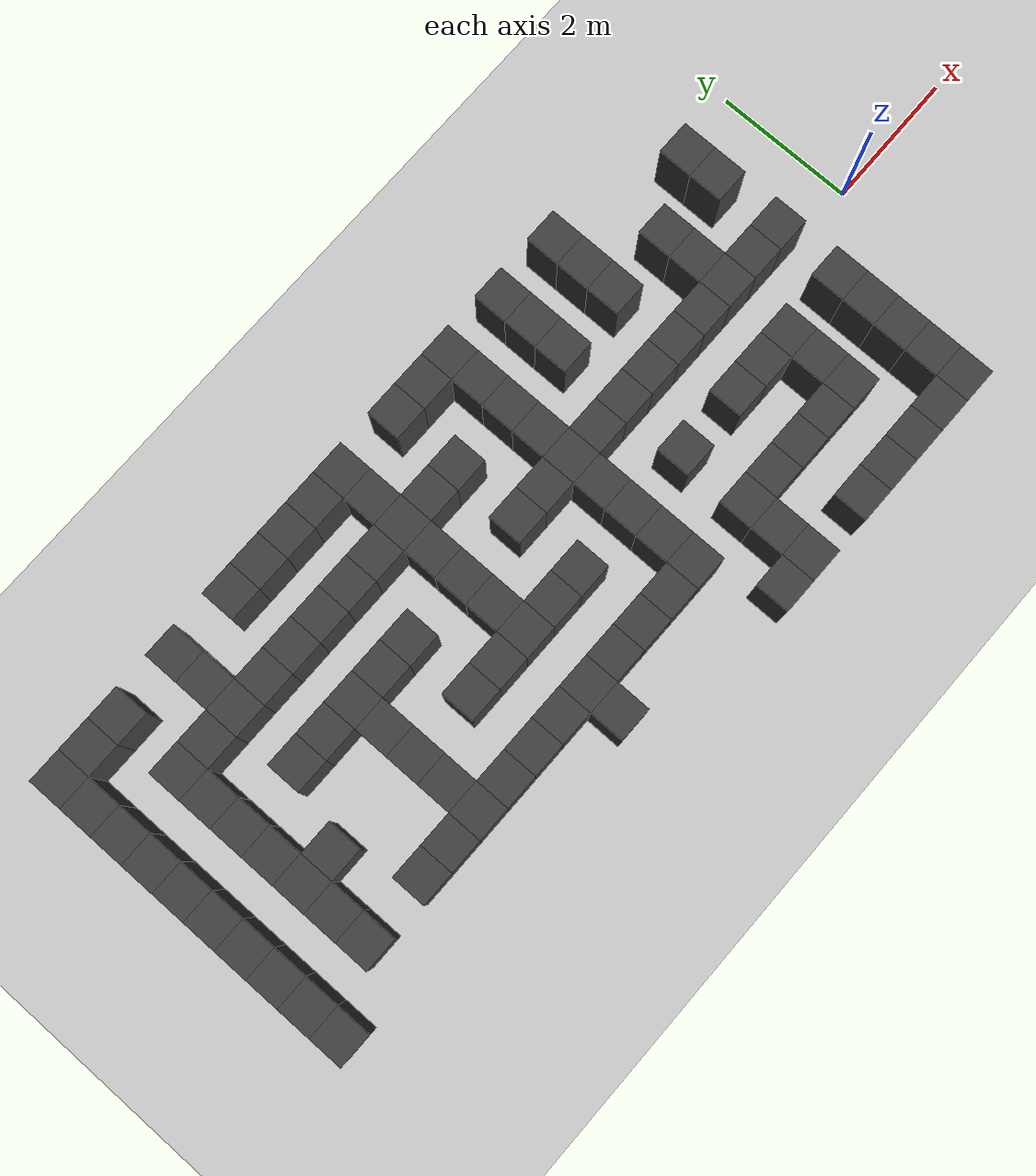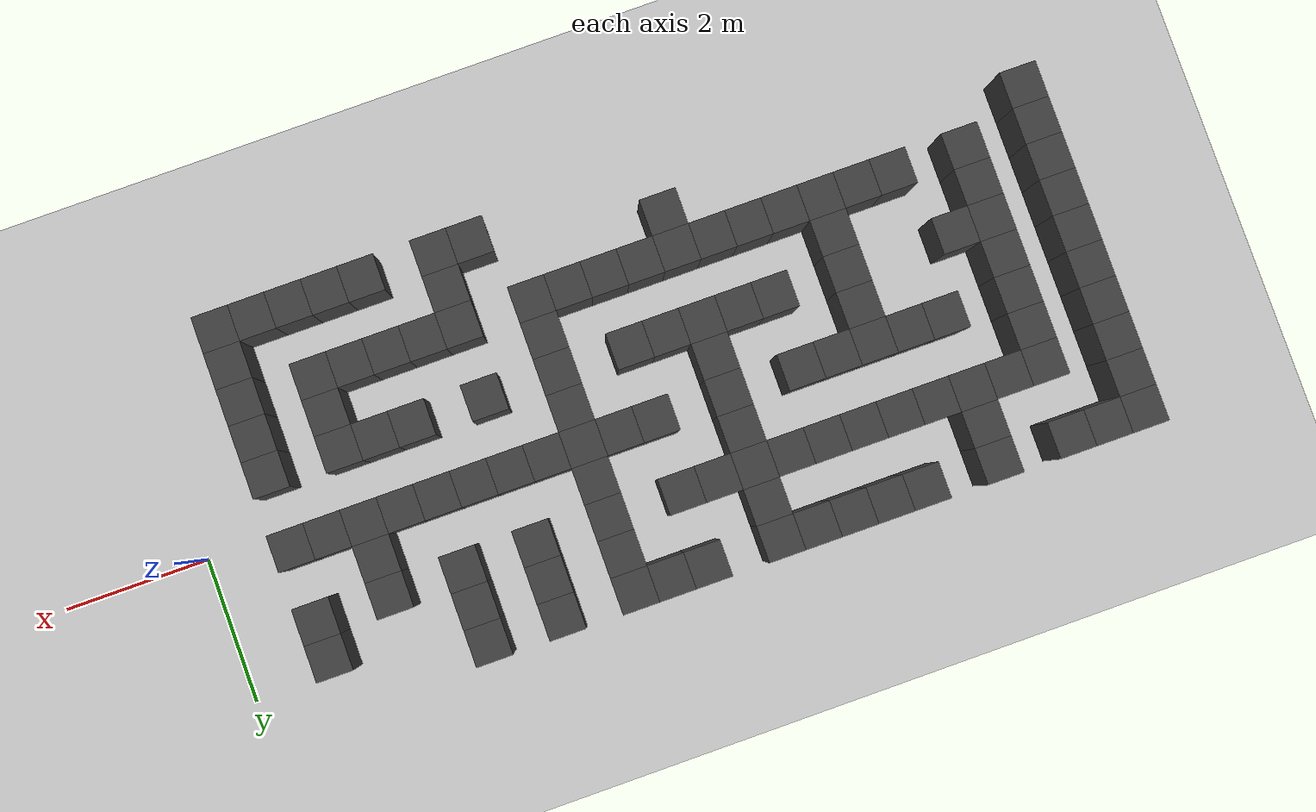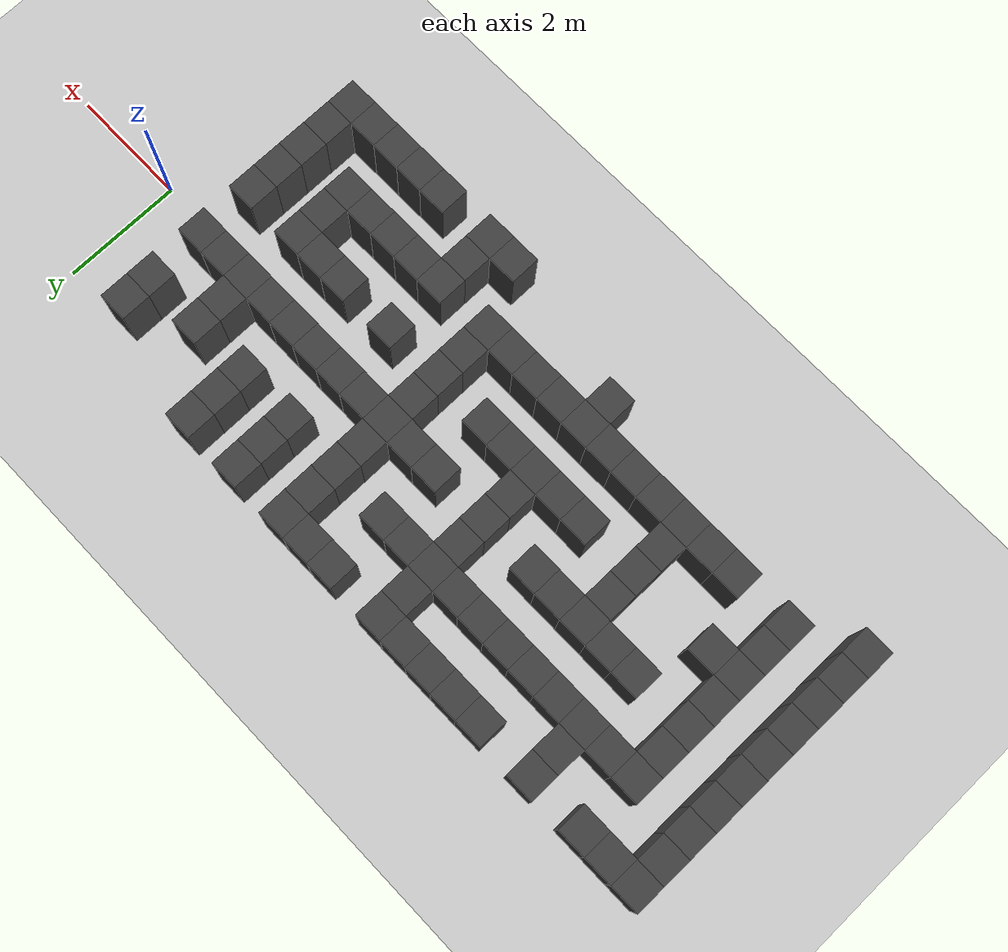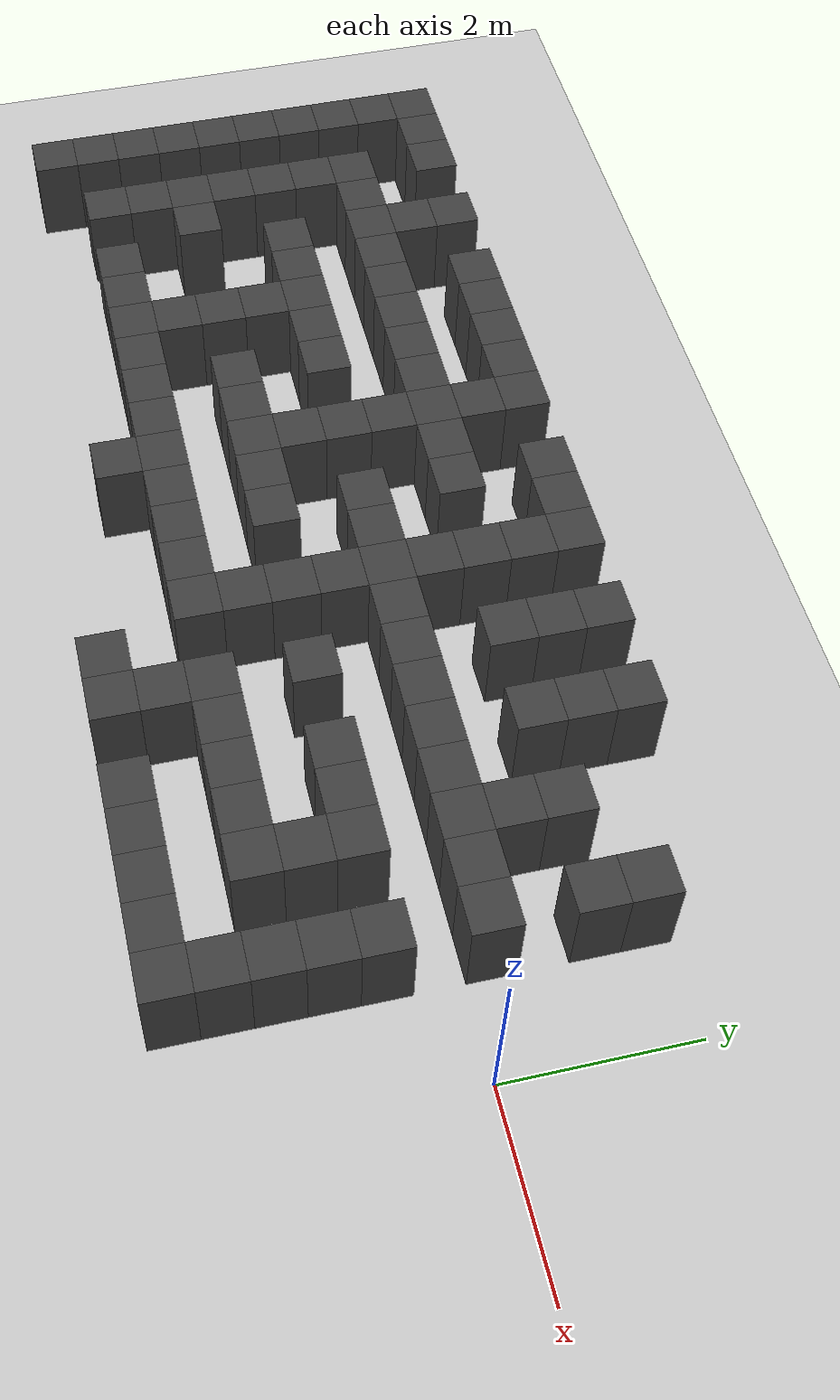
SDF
<sdf version="1.7">
 <world name="map_18505">
  <model name="ground_plane">
   <static>true</static>
   <link name="link">
    <collision name="collision">
     <geometry><plane><normal>0 0 1</normal><size>200 200</size></plane></geometry>
    </collision>
    <visual name="visual">
     <geometry><plane><normal>0 0 1</normal><size>200 200</size></plane></geometry>
     <material><ambient>0.8 0.8 0.8 1</ambient><diffuse>0.8 0.8 0.8 1</diffuse></material>
    </visual>
   </link>
  </model>
  <model name="maze_environment">
   <static>true</static>
   <link name="wall_511">
    <pose>-12.250 2.250 0.500 0 0 0</pose>
    <collision name="col"><geometry><box><size>0.5 0.5 1.0</size></box></geometry></collision>
    <visual name="vis">
     <geometry><box><size>0.5 0.5 1.0</size></box></geometry>
     <material><ambient>0.15 0.15 0.15 1</ambient><diffuse>0.25 0.25 0.25 1</diffuse></material>
    </visual>
   </link>
   <link name="wall_512">
    <pose>-11.750 2.250 0.500 0 0 0</pose>
    <collision name="col"><geometry><box><size>0.5 0.5 1.0</size></box></geometry></collision>
    <visual name="vis">
     <geometry><box><size>0.5 0.5 1.0</size></box></geometry>
     <material><ambient>0.15 0.15 0.15 1</ambient><diffuse>0.25 0.25 0.25 1</diffuse></material>
    </visual>
   </link>
   <link name="wall_513">
    <pose>-11.250 2.250 0.500 0 0 0</pose>
    <collision name="col"><geometry><box><size>0.5 0.5 1.0</size></box></geometry></collision>
    <visual name="vis">
     <geometry><box><size>0.5 0.5 1.0</size></box></geometry>
     <material><ambient>0.15 0.15 0.15 1</ambient><diffuse>0.25 0.25 0.25 1</diffuse></material>
    </visual>
   </link>
   <link name="wall_514">
    <pose>-10.250 2.250 0.500 0 0 0</pose>
    <collision name="col"><geometry><box><size>0.5 0.5 1.0</size></box></geometry></collision>
    <visual name="vis">
     <geometry><box><size>0.5 0.5 1.0</size></box></geometry>
     <material><ambient>0.15 0.15 0.15 1</ambient><diffuse>0.25 0.25 0.25 1</diffuse></material>
    </visual>
   </link>
   <link name="wall_515">
    <pose>-9.250 2.250 0.500 0 0 0</pose>
    <collision name="col"><geometry><box><size>0.5 0.5 1.0</size></box></geometry></collision>
    <visual name="vis">
     <geometry><box><size>0.5 0.5 1.0</size></box></geometry>
     <material><ambient>0.15 0.15 0.15 1</ambient><diffuse>0.25 0.25 0.25 1</diffuse></material>
    </visual>
   </link>
   <link name="wall_516">
    <pose>-8.750 2.250 0.500 0 0 0</pose>
    <collision name="col"><geometry><box><size>0.5 0.5 1.0</size></box></geometry></collision>
    <visual name="vis">
     <geometry><box><size>0.5 0.5 1.0</size></box></geometry>
     <material><ambient>0.15 0.15 0.15 1</ambient><diffuse>0.25 0.25 0.25 1</diffuse></material>
    </visual>
   </link>
   <link name="wall_517">
    <pose>-8.250 2.250 0.500 0 0 0</pose>
    <collision name="col"><geometry><box><size>0.5 0.5 1.0</size></box></geometry></collision>
    <visual name="vis">
     <geometry><box><size>0.5 0.5 1.0</size></box></geometry>
     <material><ambient>0.15 0.15 0.15 1</ambient><diffuse>0.25 0.25 0.25 1</diffuse></material>
    </visual>
   </link>
   <link name="wall_518">
    <pose>-7.750 2.250 0.500 0 0 0</pose>
    <collision name="col"><geometry><box><size>0.5 0.5 1.0</size></box></geometry></collision>
    <visual name="vis">
     <geometry><box><size>0.5 0.5 1.0</size></box></geometry>
     <material><ambient>0.15 0.15 0.15 1</ambient><diffuse>0.25 0.25 0.25 1</diffuse></material>
    </visual>
   </link>
   <link name="wall_519">
    <pose>-7.250 2.250 0.500 0 0 0</pose>
    <collision name="col"><geometry><box><size>0.5 0.5 1.0</size></box></geometry></collision>
    <visual name="vis">
     <geometry><box><size>0.5 0.5 1.0</size></box></geometry>
     <material><ambient>0.15 0.15 0.15 1</ambient><diffuse>0.25 0.25 0.25 1</diffuse></material>
    </visual>
   </link>
   <link name="wall_520">
    <pose>-6.250 2.250 0.500 0 0 0</pose>
    <collision name="col"><geometry><box><size>0.5 0.5 1.0</size></box></geometry></collision>
    <visual name="vis">
     <geometry><box><size>0.5 0.5 1.0</size></box></geometry>
     <material><ambient>0.15 0.15 0.15 1</ambient><diffuse>0.25 0.25 0.25 1</diffuse></material>
    </visual>
   </link>
   <link name="wall_521">
    <pose>-5.750 2.250 0.500 0 0 0</pose>
    <collision name="col"><geometry><box><size>0.5 0.5 1.0</size></box></geometry></collision>
    <visual name="vis">
     <geometry><box><size>0.5 0.5 1.0</size></box></geometry>
     <material><ambient>0.15 0.15 0.15 1</ambient><diffuse>0.25 0.25 0.25 1</diffuse></material>
    </visual>
   </link>
   <link name="wall_522">
    <pose>-5.250 2.250 0.500 0 0 0</pose>
    <collision name="col"><geometry><box><size>0.5 0.5 1.0</size></box></geometry></collision>
    <visual name="vis">
     <geometry><box><size>0.5 0.5 1.0</size></box></geometry>
     <material><ambient>0.15 0.15 0.15 1</ambient><diffuse>0.25 0.25 0.25 1</diffuse></material>
    </visual>
   </link>
   <link name="wall_523">
    <pose>-4.250 2.250 0.500 0 0 0</pose>
    <collision name="col"><geometry><box><size>0.5 0.5 1.0</size></box></geometry></collision>
    <visual name="vis">
     <geometry><box><size>0.5 0.5 1.0</size></box></geometry>
     <material><ambient>0.15 0.15 0.15 1</ambient><diffuse>0.25 0.25 0.25 1</diffuse></material>
    </visual>
   </link>
   <link name="wall_524">
    <pose>-3.250 2.250 0.500 0 0 0</pose>
    <collision name="col"><geometry><box><size>0.5 0.5 1.0</size></box></geometry></collision>
    <visual name="vis">
     <geometry><box><size>0.5 0.5 1.0</size></box></geometry>
     <material><ambient>0.15 0.15 0.15 1</ambient><diffuse>0.25 0.25 0.25 1</diffuse></material>
    </visual>
   </link>
   <link name="wall_545">
    <pose>-12.250 1.750 0.500 0 0 0</pose>
    <collision name="col"><geometry><box><size>0.5 0.5 1.0</size></box></geometry></collision>
    <visual name="vis">
     <geometry><box><size>0.5 0.5 1.0</size></box></geometry>
     <material><ambient>0.15 0.15 0.15 1</ambient><diffuse>0.25 0.25 0.25 1</diffuse></material>
    </visual>
   </link>
   <link name="wall_546">
    <pose>-10.250 1.750 0.500 0 0 0</pose>
    <collision name="col"><geometry><box><size>0.5 0.5 1.0</size></box></geometry></collision>
    <visual name="vis">
     <geometry><box><size>0.5 0.5 1.0</size></box></geometry>
     <material><ambient>0.15 0.15 0.15 1</ambient><diffuse>0.25 0.25 0.25 1</diffuse></material>
    </visual>
   </link>
   <link name="wall_547">
    <pose>-7.250 1.750 0.500 0 0 0</pose>
    <collision name="col"><geometry><box><size>0.5 0.5 1.0</size></box></geometry></collision>
    <visual name="vis">
     <geometry><box><size>0.5 0.5 1.0</size></box></geometry>
     <material><ambient>0.15 0.15 0.15 1</ambient><diffuse>0.25 0.25 0.25 1</diffuse></material>
    </visual>
   </link>
   <link name="wall_548">
    <pose>-5.250 1.750 0.500 0 0 0</pose>
    <collision name="col"><geometry><box><size>0.5 0.5 1.0</size></box></geometry></collision>
    <visual name="vis">
     <geometry><box><size>0.5 0.5 1.0</size></box></geometry>
     <material><ambient>0.15 0.15 0.15 1</ambient><diffuse>0.25 0.25 0.25 1</diffuse></material>
    </visual>
   </link>
   <link name="wall_549">
    <pose>-4.250 1.750 0.500 0 0 0</pose>
    <collision name="col"><geometry><box><size>0.5 0.5 1.0</size></box></geometry></collision>
    <visual name="vis">
     <geometry><box><size>0.5 0.5 1.0</size></box></geometry>
     <material><ambient>0.15 0.15 0.15 1</ambient><diffuse>0.25 0.25 0.25 1</diffuse></material>
    </visual>
   </link>
   <link name="wall_550">
    <pose>-3.250 1.750 0.500 0 0 0</pose>
    <collision name="col"><geometry><box><size>0.5 0.5 1.0</size></box></geometry></collision>
    <visual name="vis">
     <geometry><box><size>0.5 0.5 1.0</size></box></geometry>
     <material><ambient>0.15 0.15 0.15 1</ambient><diffuse>0.25 0.25 0.25 1</diffuse></material>
    </visual>
   </link>
   <link name="wall_551">
    <pose>-1.250 1.750 0.500 0 0 0</pose>
    <collision name="col"><geometry><box><size>0.5 0.5 1.0</size></box></geometry></collision>
    <visual name="vis">
     <geometry><box><size>0.5 0.5 1.0</size></box></geometry>
     <material><ambient>0.15 0.15 0.15 1</ambient><diffuse>0.25 0.25 0.25 1</diffuse></material>
    </visual>
   </link>
   <link name="wall_561">
    <pose>-12.250 1.250 0.500 0 0 0</pose>
    <collision name="col"><geometry><box><size>0.5 0.5 1.0</size></box></geometry></collision>
    <visual name="vis">
     <geometry><box><size>0.5 0.5 1.0</size></box></geometry>
     <material><ambient>0.15 0.15 0.15 1</ambient><diffuse>0.25 0.25 0.25 1</diffuse></material>
    </visual>
   </link>
   <link name="wall_562">
    <pose>-11.250 1.250 0.500 0 0 0</pose>
    <collision name="col"><geometry><box><size>0.5 0.5 1.0</size></box></geometry></collision>
    <visual name="vis">
     <geometry><box><size>0.5 0.5 1.0</size></box></geometry>
     <material><ambient>0.15 0.15 0.15 1</ambient><diffuse>0.25 0.25 0.25 1</diffuse></material>
    </visual>
   </link>
   <link name="wall_563">
    <pose>-10.750 1.250 0.500 0 0 0</pose>
    <collision name="col"><geometry><box><size>0.5 0.5 1.0</size></box></geometry></collision>
    <visual name="vis">
     <geometry><box><size>0.5 0.5 1.0</size></box></geometry>
     <material><ambient>0.15 0.15 0.15 1</ambient><diffuse>0.25 0.25 0.25 1</diffuse></material>
    </visual>
   </link>
   <link name="wall_564">
    <pose>-10.250 1.250 0.500 0 0 0</pose>
    <collision name="col"><geometry><box><size>0.5 0.5 1.0</size></box></geometry></collision>
    <visual name="vis">
     <geometry><box><size>0.5 0.5 1.0</size></box></geometry>
     <material><ambient>0.15 0.15 0.15 1</ambient><diffuse>0.25 0.25 0.25 1</diffuse></material>
    </visual>
   </link>
   <link name="wall_565">
    <pose>-9.750 1.250 0.500 0 0 0</pose>
    <collision name="col"><geometry><box><size>0.5 0.5 1.0</size></box></geometry></collision>
    <visual name="vis">
     <geometry><box><size>0.5 0.5 1.0</size></box></geometry>
     <material><ambient>0.15 0.15 0.15 1</ambient><diffuse>0.25 0.25 0.25 1</diffuse></material>
    </visual>
   </link>
   <link name="wall_566">
    <pose>-9.250 1.250 0.500 0 0 0</pose>
    <collision name="col"><geometry><box><size>0.5 0.5 1.0</size></box></geometry></collision>
    <visual name="vis">
     <geometry><box><size>0.5 0.5 1.0</size></box></geometry>
     <material><ambient>0.15 0.15 0.15 1</ambient><diffuse>0.25 0.25 0.25 1</diffuse></material>
    </visual>
   </link>
   <link name="wall_567">
    <pose>-8.750 1.250 0.500 0 0 0</pose>
    <collision name="col"><geometry><box><size>0.5 0.5 1.0</size></box></geometry></collision>
    <visual name="vis">
     <geometry><box><size>0.5 0.5 1.0</size></box></geometry>
     <material><ambient>0.15 0.15 0.15 1</ambient><diffuse>0.25 0.25 0.25 1</diffuse></material>
    </visual>
   </link>
   <link name="wall_568">
    <pose>-8.250 1.250 0.500 0 0 0</pose>
    <collision name="col"><geometry><box><size>0.5 0.5 1.0</size></box></geometry></collision>
    <visual name="vis">
     <geometry><box><size>0.5 0.5 1.0</size></box></geometry>
     <material><ambient>0.15 0.15 0.15 1</ambient><diffuse>0.25 0.25 0.25 1</diffuse></material>
    </visual>
   </link>
   <link name="wall_569">
    <pose>-7.750 1.250 0.500 0 0 0</pose>
    <collision name="col"><geometry><box><size>0.5 0.5 1.0</size></box></geometry></collision>
    <visual name="vis">
     <geometry><box><size>0.5 0.5 1.0</size></box></geometry>
     <material><ambient>0.15 0.15 0.15 1</ambient><diffuse>0.25 0.25 0.25 1</diffuse></material>
    </visual>
   </link>
   <link name="wall_570">
    <pose>-7.250 1.250 0.500 0 0 0</pose>
    <collision name="col"><geometry><box><size>0.5 0.5 1.0</size></box></geometry></collision>
    <visual name="vis">
     <geometry><box><size>0.5 0.5 1.0</size></box></geometry>
     <material><ambient>0.15 0.15 0.15 1</ambient><diffuse>0.25 0.25 0.25 1</diffuse></material>
    </visual>
   </link>
   <link name="wall_571">
    <pose>-6.750 1.250 0.500 0 0 0</pose>
    <collision name="col"><geometry><box><size>0.5 0.5 1.0</size></box></geometry></collision>
    <visual name="vis">
     <geometry><box><size>0.5 0.5 1.0</size></box></geometry>
     <material><ambient>0.15 0.15 0.15 1</ambient><diffuse>0.25 0.25 0.25 1</diffuse></material>
    </visual>
   </link>
   <link name="wall_572">
    <pose>-6.250 1.250 0.500 0 0 0</pose>
    <collision name="col"><geometry><box><size>0.5 0.5 1.0</size></box></geometry></collision>
    <visual name="vis">
     <geometry><box><size>0.5 0.5 1.0</size></box></geometry>
     <material><ambient>0.15 0.15 0.15 1</ambient><diffuse>0.25 0.25 0.25 1</diffuse></material>
    </visual>
   </link>
   <link name="wall_573">
    <pose>-5.250 1.250 0.500 0 0 0</pose>
    <collision name="col"><geometry><box><size>0.5 0.5 1.0</size></box></geometry></collision>
    <visual name="vis">
     <geometry><box><size>0.5 0.5 1.0</size></box></geometry>
     <material><ambient>0.15 0.15 0.15 1</ambient><diffuse>0.25 0.25 0.25 1</diffuse></material>
    </visual>
   </link>
   <link name="wall_574">
    <pose>-4.250 1.250 0.500 0 0 0</pose>
    <collision name="col"><geometry><box><size>0.5 0.5 1.0</size></box></geometry></collision>
    <visual name="vis">
     <geometry><box><size>0.5 0.5 1.0</size></box></geometry>
     <material><ambient>0.15 0.15 0.15 1</ambient><diffuse>0.25 0.25 0.25 1</diffuse></material>
    </visual>
   </link>
   <link name="wall_575">
    <pose>-3.250 1.250 0.500 0 0 0</pose>
    <collision name="col"><geometry><box><size>0.5 0.5 1.0</size></box></geometry></collision>
    <visual name="vis">
     <geometry><box><size>0.5 0.5 1.0</size></box></geometry>
     <material><ambient>0.15 0.15 0.15 1</ambient><diffuse>0.25 0.25 0.25 1</diffuse></material>
    </visual>
   </link>
   <link name="wall_576">
    <pose>-2.250 1.250 0.500 0 0 0</pose>
    <collision name="col"><geometry><box><size>0.5 0.5 1.0</size></box></geometry></collision>
    <visual name="vis">
     <geometry><box><size>0.5 0.5 1.0</size></box></geometry>
     <material><ambient>0.15 0.15 0.15 1</ambient><diffuse>0.25 0.25 0.25 1</diffuse></material>
    </visual>
   </link>
   <link name="wall_577">
    <pose>-1.250 1.250 0.500 0 0 0</pose>
    <collision name="col"><geometry><box><size>0.5 0.5 1.0</size></box></geometry></collision>
    <visual name="vis">
     <geometry><box><size>0.5 0.5 1.0</size></box></geometry>
     <material><ambient>0.15 0.15 0.15 1</ambient><diffuse>0.25 0.25 0.25 1</diffuse></material>
    </visual>
   </link>
   <link name="wall_599">
    <pose>-12.250 0.750 0.500 0 0 0</pose>
    <collision name="col"><geometry><box><size>0.5 0.5 1.0</size></box></geometry></collision>
    <visual name="vis">
     <geometry><box><size>0.5 0.5 1.0</size></box></geometry>
     <material><ambient>0.15 0.15 0.15 1</ambient><diffuse>0.25 0.25 0.25 1</diffuse></material>
    </visual>
   </link>
   <link name="wall_600">
    <pose>-11.250 0.750 0.500 0 0 0</pose>
    <collision name="col"><geometry><box><size>0.5 0.5 1.0</size></box></geometry></collision>
    <visual name="vis">
     <geometry><box><size>0.5 0.5 1.0</size></box></geometry>
     <material><ambient>0.15 0.15 0.15 1</ambient><diffuse>0.25 0.25 0.25 1</diffuse></material>
    </visual>
   </link>
   <link name="wall_601">
    <pose>-7.250 0.750 0.500 0 0 0</pose>
    <collision name="col"><geometry><box><size>0.5 0.5 1.0</size></box></geometry></collision>
    <visual name="vis">
     <geometry><box><size>0.5 0.5 1.0</size></box></geometry>
     <material><ambient>0.15 0.15 0.15 1</ambient><diffuse>0.25 0.25 0.25 1</diffuse></material>
    </visual>
   </link>
   <link name="wall_602">
    <pose>-5.250 0.750 0.500 0 0 0</pose>
    <collision name="col"><geometry><box><size>0.5 0.5 1.0</size></box></geometry></collision>
    <visual name="vis">
     <geometry><box><size>0.5 0.5 1.0</size></box></geometry>
     <material><ambient>0.15 0.15 0.15 1</ambient><diffuse>0.25 0.25 0.25 1</diffuse></material>
    </visual>
   </link>
   <link name="wall_603">
    <pose>-2.250 0.750 0.500 0 0 0</pose>
    <collision name="col"><geometry><box><size>0.5 0.5 1.0</size></box></geometry></collision>
    <visual name="vis">
     <geometry><box><size>0.5 0.5 1.0</size></box></geometry>
     <material><ambient>0.15 0.15 0.15 1</ambient><diffuse>0.25 0.25 0.25 1</diffuse></material>
    </visual>
   </link>
   <link name="wall_612">
    <pose>-12.250 0.250 0.500 0 0 0</pose>
    <collision name="col"><geometry><box><size>0.5 0.5 1.0</size></box></geometry></collision>
    <visual name="vis">
     <geometry><box><size>0.5 0.5 1.0</size></box></geometry>
     <material><ambient>0.15 0.15 0.15 1</ambient><diffuse>0.25 0.25 0.25 1</diffuse></material>
    </visual>
   </link>
   <link name="wall_613">
    <pose>-11.250 0.250 0.500 0 0 0</pose>
    <collision name="col"><geometry><box><size>0.5 0.5 1.0</size></box></geometry></collision>
    <visual name="vis">
     <geometry><box><size>0.5 0.5 1.0</size></box></geometry>
     <material><ambient>0.15 0.15 0.15 1</ambient><diffuse>0.25 0.25 0.25 1</diffuse></material>
    </visual>
   </link>
   <link name="wall_614">
    <pose>-10.250 0.250 0.500 0 0 0</pose>
    <collision name="col"><geometry><box><size>0.5 0.5 1.0</size></box></geometry></collision>
    <visual name="vis">
     <geometry><box><size>0.5 0.5 1.0</size></box></geometry>
     <material><ambient>0.15 0.15 0.15 1</ambient><diffuse>0.25 0.25 0.25 1</diffuse></material>
    </visual>
   </link>
   <link name="wall_615">
    <pose>-9.750 0.250 0.500 0 0 0</pose>
    <collision name="col"><geometry><box><size>0.5 0.5 1.0</size></box></geometry></collision>
    <visual name="vis">
     <geometry><box><size>0.5 0.5 1.0</size></box></geometry>
     <material><ambient>0.15 0.15 0.15 1</ambient><diffuse>0.25 0.25 0.25 1</diffuse></material>
    </visual>
   </link>
   <link name="wall_616">
    <pose>-9.250 0.250 0.500 0 0 0</pose>
    <collision name="col"><geometry><box><size>0.5 0.5 1.0</size></box></geometry></collision>
    <visual name="vis">
     <geometry><box><size>0.5 0.5 1.0</size></box></geometry>
     <material><ambient>0.15 0.15 0.15 1</ambient><diffuse>0.25 0.25 0.25 1</diffuse></material>
    </visual>
   </link>
   <link name="wall_617">
    <pose>-8.750 0.250 0.500 0 0 0</pose>
    <collision name="col"><geometry><box><size>0.5 0.5 1.0</size></box></geometry></collision>
    <visual name="vis">
     <geometry><box><size>0.5 0.5 1.0</size></box></geometry>
     <material><ambient>0.15 0.15 0.15 1</ambient><diffuse>0.25 0.25 0.25 1</diffuse></material>
    </visual>
   </link>
   <link name="wall_618">
    <pose>-8.250 0.250 0.500 0 0 0</pose>
    <collision name="col"><geometry><box><size>0.5 0.5 1.0</size></box></geometry></collision>
    <visual name="vis">
     <geometry><box><size>0.5 0.5 1.0</size></box></geometry>
     <material><ambient>0.15 0.15 0.15 1</ambient><diffuse>0.25 0.25 0.25 1</diffuse></material>
    </visual>
   </link>
   <link name="wall_619">
    <pose>-7.250 0.250 0.500 0 0 0</pose>
    <collision name="col"><geometry><box><size>0.5 0.5 1.0</size></box></geometry></collision>
    <visual name="vis">
     <geometry><box><size>0.5 0.5 1.0</size></box></geometry>
     <material><ambient>0.15 0.15 0.15 1</ambient><diffuse>0.25 0.25 0.25 1</diffuse></material>
    </visual>
   </link>
   <link name="wall_620">
    <pose>-6.250 0.250 0.500 0 0 0</pose>
    <collision name="col"><geometry><box><size>0.5 0.5 1.0</size></box></geometry></collision>
    <visual name="vis">
     <geometry><box><size>0.5 0.5 1.0</size></box></geometry>
     <material><ambient>0.15 0.15 0.15 1</ambient><diffuse>0.25 0.25 0.25 1</diffuse></material>
    </visual>
   </link>
   <link name="wall_621">
    <pose>-5.750 0.250 0.500 0 0 0</pose>
    <collision name="col"><geometry><box><size>0.5 0.5 1.0</size></box></geometry></collision>
    <visual name="vis">
     <geometry><box><size>0.5 0.5 1.0</size></box></geometry>
     <material><ambient>0.15 0.15 0.15 1</ambient><diffuse>0.25 0.25 0.25 1</diffuse></material>
    </visual>
   </link>
   <link name="wall_622">
    <pose>-5.250 0.250 0.500 0 0 0</pose>
    <collision name="col"><geometry><box><size>0.5 0.5 1.0</size></box></geometry></collision>
    <visual name="vis">
     <geometry><box><size>0.5 0.5 1.0</size></box></geometry>
     <material><ambient>0.15 0.15 0.15 1</ambient><diffuse>0.25 0.25 0.25 1</diffuse></material>
    </visual>
   </link>
   <link name="wall_623">
    <pose>-4.750 0.250 0.500 0 0 0</pose>
    <collision name="col"><geometry><box><size>0.5 0.5 1.0</size></box></geometry></collision>
    <visual name="vis">
     <geometry><box><size>0.5 0.5 1.0</size></box></geometry>
     <material><ambient>0.15 0.15 0.15 1</ambient><diffuse>0.25 0.25 0.25 1</diffuse></material>
    </visual>
   </link>
   <link name="wall_624">
    <pose>-4.250 0.250 0.500 0 0 0</pose>
    <collision name="col"><geometry><box><size>0.5 0.5 1.0</size></box></geometry></collision>
    <visual name="vis">
     <geometry><box><size>0.5 0.5 1.0</size></box></geometry>
     <material><ambient>0.15 0.15 0.15 1</ambient><diffuse>0.25 0.25 0.25 1</diffuse></material>
    </visual>
   </link>
   <link name="wall_625">
    <pose>-3.750 0.250 0.500 0 0 0</pose>
    <collision name="col"><geometry><box><size>0.5 0.5 1.0</size></box></geometry></collision>
    <visual name="vis">
     <geometry><box><size>0.5 0.5 1.0</size></box></geometry>
     <material><ambient>0.15 0.15 0.15 1</ambient><diffuse>0.25 0.25 0.25 1</diffuse></material>
    </visual>
   </link>
   <link name="wall_626">
    <pose>-3.250 0.250 0.500 0 0 0</pose>
    <collision name="col"><geometry><box><size>0.5 0.5 1.0</size></box></geometry></collision>
    <visual name="vis">
     <geometry><box><size>0.5 0.5 1.0</size></box></geometry>
     <material><ambient>0.15 0.15 0.15 1</ambient><diffuse>0.25 0.25 0.25 1</diffuse></material>
    </visual>
   </link>
   <link name="wall_627">
    <pose>-2.750 0.250 0.500 0 0 0</pose>
    <collision name="col"><geometry><box><size>0.5 0.5 1.0</size></box></geometry></collision>
    <visual name="vis">
     <geometry><box><size>0.5 0.5 1.0</size></box></geometry>
     <material><ambient>0.15 0.15 0.15 1</ambient><diffuse>0.25 0.25 0.25 1</diffuse></material>
    </visual>
   </link>
   <link name="wall_628">
    <pose>-2.250 0.250 0.500 0 0 0</pose>
    <collision name="col"><geometry><box><size>0.5 0.5 1.0</size></box></geometry></collision>
    <visual name="vis">
     <geometry><box><size>0.5 0.5 1.0</size></box></geometry>
     <material><ambient>0.15 0.15 0.15 1</ambient><diffuse>0.25 0.25 0.25 1</diffuse></material>
    </visual>
   </link>
   <link name="wall_629">
    <pose>-1.750 0.250 0.500 0 0 0</pose>
    <collision name="col"><geometry><box><size>0.5 0.5 1.0</size></box></geometry></collision>
    <visual name="vis">
     <geometry><box><size>0.5 0.5 1.0</size></box></geometry>
     <material><ambient>0.15 0.15 0.15 1</ambient><diffuse>0.25 0.25 0.25 1</diffuse></material>
    </visual>
   </link>
   <link name="wall_630">
    <pose>-1.250 0.250 0.500 0 0 0</pose>
    <collision name="col"><geometry><box><size>0.5 0.5 1.0</size></box></geometry></collision>
    <visual name="vis">
     <geometry><box><size>0.5 0.5 1.0</size></box></geometry>
     <material><ambient>0.15 0.15 0.15 1</ambient><diffuse>0.25 0.25 0.25 1</diffuse></material>
    </visual>
   </link>
   <link name="wall_652">
    <pose>-12.250 -0.250 0.500 0 0 0</pose>
    <collision name="col"><geometry><box><size>0.5 0.5 1.0</size></box></geometry></collision>
    <visual name="vis">
     <geometry><box><size>0.5 0.5 1.0</size></box></geometry>
     <material><ambient>0.15 0.15 0.15 1</ambient><diffuse>0.25 0.25 0.25 1</diffuse></material>
    </visual>
   </link>
   <link name="wall_653">
    <pose>-11.250 -0.250 0.500 0 0 0</pose>
    <collision name="col"><geometry><box><size>0.5 0.5 1.0</size></box></geometry></collision>
    <visual name="vis">
     <geometry><box><size>0.5 0.5 1.0</size></box></geometry>
     <material><ambient>0.15 0.15 0.15 1</ambient><diffuse>0.25 0.25 0.25 1</diffuse></material>
    </visual>
   </link>
   <link name="wall_654">
    <pose>-9.250 -0.250 0.500 0 0 0</pose>
    <collision name="col"><geometry><box><size>0.5 0.5 1.0</size></box></geometry></collision>
    <visual name="vis">
     <geometry><box><size>0.5 0.5 1.0</size></box></geometry>
     <material><ambient>0.15 0.15 0.15 1</ambient><diffuse>0.25 0.25 0.25 1</diffuse></material>
    </visual>
   </link>
   <link name="wall_655">
    <pose>-7.250 -0.250 0.500 0 0 0</pose>
    <collision name="col"><geometry><box><size>0.5 0.5 1.0</size></box></geometry></collision>
    <visual name="vis">
     <geometry><box><size>0.5 0.5 1.0</size></box></geometry>
     <material><ambient>0.15 0.15 0.15 1</ambient><diffuse>0.25 0.25 0.25 1</diffuse></material>
    </visual>
   </link>
   <link name="wall_656">
    <pose>-5.250 -0.250 0.500 0 0 0</pose>
    <collision name="col"><geometry><box><size>0.5 0.5 1.0</size></box></geometry></collision>
    <visual name="vis">
     <geometry><box><size>0.5 0.5 1.0</size></box></geometry>
     <material><ambient>0.15 0.15 0.15 1</ambient><diffuse>0.25 0.25 0.25 1</diffuse></material>
    </visual>
   </link>
   <link name="wall_664">
    <pose>-12.250 -0.750 0.500 0 0 0</pose>
    <collision name="col"><geometry><box><size>0.5 0.5 1.0</size></box></geometry></collision>
    <visual name="vis">
     <geometry><box><size>0.5 0.5 1.0</size></box></geometry>
     <material><ambient>0.15 0.15 0.15 1</ambient><diffuse>0.25 0.25 0.25 1</diffuse></material>
    </visual>
   </link>
   <link name="wall_665">
    <pose>-11.250 -0.750 0.500 0 0 0</pose>
    <collision name="col"><geometry><box><size>0.5 0.5 1.0</size></box></geometry></collision>
    <visual name="vis">
     <geometry><box><size>0.5 0.5 1.0</size></box></geometry>
     <material><ambient>0.15 0.15 0.15 1</ambient><diffuse>0.25 0.25 0.25 1</diffuse></material>
    </visual>
   </link>
   <link name="wall_666">
    <pose>-10.750 -0.750 0.500 0 0 0</pose>
    <collision name="col"><geometry><box><size>0.5 0.5 1.0</size></box></geometry></collision>
    <visual name="vis">
     <geometry><box><size>0.5 0.5 1.0</size></box></geometry>
     <material><ambient>0.15 0.15 0.15 1</ambient><diffuse>0.25 0.25 0.25 1</diffuse></material>
    </visual>
   </link>
   <link name="wall_667">
    <pose>-9.250 -0.750 0.500 0 0 0</pose>
    <collision name="col"><geometry><box><size>0.5 0.5 1.0</size></box></geometry></collision>
    <visual name="vis">
     <geometry><box><size>0.5 0.5 1.0</size></box></geometry>
     <material><ambient>0.15 0.15 0.15 1</ambient><diffuse>0.25 0.25 0.25 1</diffuse></material>
    </visual>
   </link>
   <link name="wall_668">
    <pose>-8.250 -0.750 0.500 0 0 0</pose>
    <collision name="col"><geometry><box><size>0.5 0.5 1.0</size></box></geometry></collision>
    <visual name="vis">
     <geometry><box><size>0.5 0.5 1.0</size></box></geometry>
     <material><ambient>0.15 0.15 0.15 1</ambient><diffuse>0.25 0.25 0.25 1</diffuse></material>
    </visual>
   </link>
   <link name="wall_669">
    <pose>-7.750 -0.750 0.500 0 0 0</pose>
    <collision name="col"><geometry><box><size>0.5 0.5 1.0</size></box></geometry></collision>
    <visual name="vis">
     <geometry><box><size>0.5 0.5 1.0</size></box></geometry>
     <material><ambient>0.15 0.15 0.15 1</ambient><diffuse>0.25 0.25 0.25 1</diffuse></material>
    </visual>
   </link>
   <link name="wall_670">
    <pose>-7.250 -0.750 0.500 0 0 0</pose>
    <collision name="col"><geometry><box><size>0.5 0.5 1.0</size></box></geometry></collision>
    <visual name="vis">
     <geometry><box><size>0.5 0.5 1.0</size></box></geometry>
     <material><ambient>0.15 0.15 0.15 1</ambient><diffuse>0.25 0.25 0.25 1</diffuse></material>
    </visual>
   </link>
   <link name="wall_671">
    <pose>-6.750 -0.750 0.500 0 0 0</pose>
    <collision name="col"><geometry><box><size>0.5 0.5 1.0</size></box></geometry></collision>
    <visual name="vis">
     <geometry><box><size>0.5 0.5 1.0</size></box></geometry>
     <material><ambient>0.15 0.15 0.15 1</ambient><diffuse>0.25 0.25 0.25 1</diffuse></material>
    </visual>
   </link>
   <link name="wall_672">
    <pose>-6.250 -0.750 0.500 0 0 0</pose>
    <collision name="col"><geometry><box><size>0.5 0.5 1.0</size></box></geometry></collision>
    <visual name="vis">
     <geometry><box><size>0.5 0.5 1.0</size></box></geometry>
     <material><ambient>0.15 0.15 0.15 1</ambient><diffuse>0.25 0.25 0.25 1</diffuse></material>
    </visual>
   </link>
   <link name="wall_673">
    <pose>-5.250 -0.750 0.500 0 0 0</pose>
    <collision name="col"><geometry><box><size>0.5 0.5 1.0</size></box></geometry></collision>
    <visual name="vis">
     <geometry><box><size>0.5 0.5 1.0</size></box></geometry>
     <material><ambient>0.15 0.15 0.15 1</ambient><diffuse>0.25 0.25 0.25 1</diffuse></material>
    </visual>
   </link>
   <link name="wall_674">
    <pose>-4.250 -0.750 0.500 0 0 0</pose>
    <collision name="col"><geometry><box><size>0.5 0.5 1.0</size></box></geometry></collision>
    <visual name="vis">
     <geometry><box><size>0.5 0.5 1.0</size></box></geometry>
     <material><ambient>0.15 0.15 0.15 1</ambient><diffuse>0.25 0.25 0.25 1</diffuse></material>
    </visual>
   </link>
   <link name="wall_675">
    <pose>-3.250 -0.750 0.500 0 0 0</pose>
    <collision name="col"><geometry><box><size>0.5 0.5 1.0</size></box></geometry></collision>
    <visual name="vis">
     <geometry><box><size>0.5 0.5 1.0</size></box></geometry>
     <material><ambient>0.15 0.15 0.15 1</ambient><diffuse>0.25 0.25 0.25 1</diffuse></material>
    </visual>
   </link>
   <link name="wall_676">
    <pose>-2.750 -0.750 0.500 0 0 0</pose>
    <collision name="col"><geometry><box><size>0.5 0.5 1.0</size></box></geometry></collision>
    <visual name="vis">
     <geometry><box><size>0.5 0.5 1.0</size></box></geometry>
     <material><ambient>0.15 0.15 0.15 1</ambient><diffuse>0.25 0.25 0.25 1</diffuse></material>
    </visual>
   </link>
   <link name="wall_677">
    <pose>-2.250 -0.750 0.500 0 0 0</pose>
    <collision name="col"><geometry><box><size>0.5 0.5 1.0</size></box></geometry></collision>
    <visual name="vis">
     <geometry><box><size>0.5 0.5 1.0</size></box></geometry>
     <material><ambient>0.15 0.15 0.15 1</ambient><diffuse>0.25 0.25 0.25 1</diffuse></material>
    </visual>
   </link>
   <link name="wall_678">
    <pose>-1.250 -0.750 0.500 0 0 0</pose>
    <collision name="col"><geometry><box><size>0.5 0.5 1.0</size></box></geometry></collision>
    <visual name="vis">
     <geometry><box><size>0.5 0.5 1.0</size></box></geometry>
     <material><ambient>0.15 0.15 0.15 1</ambient><diffuse>0.25 0.25 0.25 1</diffuse></material>
    </visual>
   </link>
   <link name="wall_699">
    <pose>-12.250 -1.250 0.500 0 0 0</pose>
    <collision name="col"><geometry><box><size>0.5 0.5 1.0</size></box></geometry></collision>
    <visual name="vis">
     <geometry><box><size>0.5 0.5 1.0</size></box></geometry>
     <material><ambient>0.15 0.15 0.15 1</ambient><diffuse>0.25 0.25 0.25 1</diffuse></material>
    </visual>
   </link>
   <link name="wall_700">
    <pose>-11.250 -1.250 0.500 0 0 0</pose>
    <collision name="col"><geometry><box><size>0.5 0.5 1.0</size></box></geometry></collision>
    <visual name="vis">
     <geometry><box><size>0.5 0.5 1.0</size></box></geometry>
     <material><ambient>0.15 0.15 0.15 1</ambient><diffuse>0.25 0.25 0.25 1</diffuse></material>
    </visual>
   </link>
   <link name="wall_701">
    <pose>-9.250 -1.250 0.500 0 0 0</pose>
    <collision name="col"><geometry><box><size>0.5 0.5 1.0</size></box></geometry></collision>
    <visual name="vis">
     <geometry><box><size>0.5 0.5 1.0</size></box></geometry>
     <material><ambient>0.15 0.15 0.15 1</ambient><diffuse>0.25 0.25 0.25 1</diffuse></material>
    </visual>
   </link>
   <link name="wall_702">
    <pose>-5.250 -1.250 0.500 0 0 0</pose>
    <collision name="col"><geometry><box><size>0.5 0.5 1.0</size></box></geometry></collision>
    <visual name="vis">
     <geometry><box><size>0.5 0.5 1.0</size></box></geometry>
     <material><ambient>0.15 0.15 0.15 1</ambient><diffuse>0.25 0.25 0.25 1</diffuse></material>
    </visual>
   </link>
   <link name="wall_703">
    <pose>-2.250 -1.250 0.500 0 0 0</pose>
    <collision name="col"><geometry><box><size>0.5 0.5 1.0</size></box></geometry></collision>
    <visual name="vis">
     <geometry><box><size>0.5 0.5 1.0</size></box></geometry>
     <material><ambient>0.15 0.15 0.15 1</ambient><diffuse>0.25 0.25 0.25 1</diffuse></material>
    </visual>
   </link>
   <link name="wall_704">
    <pose>-1.250 -1.250 0.500 0 0 0</pose>
    <collision name="col"><geometry><box><size>0.5 0.5 1.0</size></box></geometry></collision>
    <visual name="vis">
     <geometry><box><size>0.5 0.5 1.0</size></box></geometry>
     <material><ambient>0.15 0.15 0.15 1</ambient><diffuse>0.25 0.25 0.25 1</diffuse></material>
    </visual>
   </link>
   <link name="wall_713">
    <pose>-12.250 -1.750 0.500 0 0 0</pose>
    <collision name="col"><geometry><box><size>0.5 0.5 1.0</size></box></geometry></collision>
    <visual name="vis">
     <geometry><box><size>0.5 0.5 1.0</size></box></geometry>
     <material><ambient>0.15 0.15 0.15 1</ambient><diffuse>0.25 0.25 0.25 1</diffuse></material>
    </visual>
   </link>
   <link name="wall_714">
    <pose>-11.250 -1.750 0.500 0 0 0</pose>
    <collision name="col"><geometry><box><size>0.5 0.5 1.0</size></box></geometry></collision>
    <visual name="vis">
     <geometry><box><size>0.5 0.5 1.0</size></box></geometry>
     <material><ambient>0.15 0.15 0.15 1</ambient><diffuse>0.25 0.25 0.25 1</diffuse></material>
    </visual>
   </link>
   <link name="wall_715">
    <pose>-10.250 -1.750 0.500 0 0 0</pose>
    <collision name="col"><geometry><box><size>0.5 0.5 1.0</size></box></geometry></collision>
    <visual name="vis">
     <geometry><box><size>0.5 0.5 1.0</size></box></geometry>
     <material><ambient>0.15 0.15 0.15 1</ambient><diffuse>0.25 0.25 0.25 1</diffuse></material>
    </visual>
   </link>
   <link name="wall_716">
    <pose>-9.750 -1.750 0.500 0 0 0</pose>
    <collision name="col"><geometry><box><size>0.5 0.5 1.0</size></box></geometry></collision>
    <visual name="vis">
     <geometry><box><size>0.5 0.5 1.0</size></box></geometry>
     <material><ambient>0.15 0.15 0.15 1</ambient><diffuse>0.25 0.25 0.25 1</diffuse></material>
    </visual>
   </link>
   <link name="wall_717">
    <pose>-9.250 -1.750 0.500 0 0 0</pose>
    <collision name="col"><geometry><box><size>0.5 0.5 1.0</size></box></geometry></collision>
    <visual name="vis">
     <geometry><box><size>0.5 0.5 1.0</size></box></geometry>
     <material><ambient>0.15 0.15 0.15 1</ambient><diffuse>0.25 0.25 0.25 1</diffuse></material>
    </visual>
   </link>
   <link name="wall_718">
    <pose>-8.750 -1.750 0.500 0 0 0</pose>
    <collision name="col"><geometry><box><size>0.5 0.5 1.0</size></box></geometry></collision>
    <visual name="vis">
     <geometry><box><size>0.5 0.5 1.0</size></box></geometry>
     <material><ambient>0.15 0.15 0.15 1</ambient><diffuse>0.25 0.25 0.25 1</diffuse></material>
    </visual>
   </link>
   <link name="wall_719">
    <pose>-8.250 -1.750 0.500 0 0 0</pose>
    <collision name="col"><geometry><box><size>0.5 0.5 1.0</size></box></geometry></collision>
    <visual name="vis">
     <geometry><box><size>0.5 0.5 1.0</size></box></geometry>
     <material><ambient>0.15 0.15 0.15 1</ambient><diffuse>0.25 0.25 0.25 1</diffuse></material>
    </visual>
   </link>
   <link name="wall_720">
    <pose>-7.750 -1.750 0.500 0 0 0</pose>
    <collision name="col"><geometry><box><size>0.5 0.5 1.0</size></box></geometry></collision>
    <visual name="vis">
     <geometry><box><size>0.5 0.5 1.0</size></box></geometry>
     <material><ambient>0.15 0.15 0.15 1</ambient><diffuse>0.25 0.25 0.25 1</diffuse></material>
    </visual>
   </link>
   <link name="wall_721">
    <pose>-7.250 -1.750 0.500 0 0 0</pose>
    <collision name="col"><geometry><box><size>0.5 0.5 1.0</size></box></geometry></collision>
    <visual name="vis">
     <geometry><box><size>0.5 0.5 1.0</size></box></geometry>
     <material><ambient>0.15 0.15 0.15 1</ambient><diffuse>0.25 0.25 0.25 1</diffuse></material>
    </visual>
   </link>
   <link name="wall_722">
    <pose>-6.750 -1.750 0.500 0 0 0</pose>
    <collision name="col"><geometry><box><size>0.5 0.5 1.0</size></box></geometry></collision>
    <visual name="vis">
     <geometry><box><size>0.5 0.5 1.0</size></box></geometry>
     <material><ambient>0.15 0.15 0.15 1</ambient><diffuse>0.25 0.25 0.25 1</diffuse></material>
    </visual>
   </link>
   <link name="wall_723">
    <pose>-6.250 -1.750 0.500 0 0 0</pose>
    <collision name="col"><geometry><box><size>0.5 0.5 1.0</size></box></geometry></collision>
    <visual name="vis">
     <geometry><box><size>0.5 0.5 1.0</size></box></geometry>
     <material><ambient>0.15 0.15 0.15 1</ambient><diffuse>0.25 0.25 0.25 1</diffuse></material>
    </visual>
   </link>
   <link name="wall_724">
    <pose>-5.750 -1.750 0.500 0 0 0</pose>
    <collision name="col"><geometry><box><size>0.5 0.5 1.0</size></box></geometry></collision>
    <visual name="vis">
     <geometry><box><size>0.5 0.5 1.0</size></box></geometry>
     <material><ambient>0.15 0.15 0.15 1</ambient><diffuse>0.25 0.25 0.25 1</diffuse></material>
    </visual>
   </link>
   <link name="wall_725">
    <pose>-5.250 -1.750 0.500 0 0 0</pose>
    <collision name="col"><geometry><box><size>0.5 0.5 1.0</size></box></geometry></collision>
    <visual name="vis">
     <geometry><box><size>0.5 0.5 1.0</size></box></geometry>
     <material><ambient>0.15 0.15 0.15 1</ambient><diffuse>0.25 0.25 0.25 1</diffuse></material>
    </visual>
   </link>
   <link name="wall_726">
    <pose>-4.250 -1.750 0.500 0 0 0</pose>
    <collision name="col"><geometry><box><size>0.5 0.5 1.0</size></box></geometry></collision>
    <visual name="vis">
     <geometry><box><size>0.5 0.5 1.0</size></box></geometry>
     <material><ambient>0.15 0.15 0.15 1</ambient><diffuse>0.25 0.25 0.25 1</diffuse></material>
    </visual>
   </link>
   <link name="wall_727">
    <pose>-3.750 -1.750 0.500 0 0 0</pose>
    <collision name="col"><geometry><box><size>0.5 0.5 1.0</size></box></geometry></collision>
    <visual name="vis">
     <geometry><box><size>0.5 0.5 1.0</size></box></geometry>
     <material><ambient>0.15 0.15 0.15 1</ambient><diffuse>0.25 0.25 0.25 1</diffuse></material>
    </visual>
   </link>
   <link name="wall_728">
    <pose>-3.250 -1.750 0.500 0 0 0</pose>
    <collision name="col"><geometry><box><size>0.5 0.5 1.0</size></box></geometry></collision>
    <visual name="vis">
     <geometry><box><size>0.5 0.5 1.0</size></box></geometry>
     <material><ambient>0.15 0.15 0.15 1</ambient><diffuse>0.25 0.25 0.25 1</diffuse></material>
    </visual>
   </link>
   <link name="wall_729">
    <pose>-2.750 -1.750 0.500 0 0 0</pose>
    <collision name="col"><geometry><box><size>0.5 0.5 1.0</size></box></geometry></collision>
    <visual name="vis">
     <geometry><box><size>0.5 0.5 1.0</size></box></geometry>
     <material><ambient>0.15 0.15 0.15 1</ambient><diffuse>0.25 0.25 0.25 1</diffuse></material>
    </visual>
   </link>
   <link name="wall_730">
    <pose>-2.250 -1.750 0.500 0 0 0</pose>
    <collision name="col"><geometry><box><size>0.5 0.5 1.0</size></box></geometry></collision>
    <visual name="vis">
     <geometry><box><size>0.5 0.5 1.0</size></box></geometry>
     <material><ambient>0.15 0.15 0.15 1</ambient><diffuse>0.25 0.25 0.25 1</diffuse></material>
    </visual>
   </link>
   <link name="wall_731">
    <pose>-1.250 -1.750 0.500 0 0 0</pose>
    <collision name="col"><geometry><box><size>0.5 0.5 1.0</size></box></geometry></collision>
    <visual name="vis">
     <geometry><box><size>0.5 0.5 1.0</size></box></geometry>
     <material><ambient>0.15 0.15 0.15 1</ambient><diffuse>0.25 0.25 0.25 1</diffuse></material>
    </visual>
   </link>
   <link name="wall_748">
    <pose>-12.250 -2.250 0.500 0 0 0</pose>
    <collision name="col"><geometry><box><size>0.5 0.5 1.0</size></box></geometry></collision>
    <visual name="vis">
     <geometry><box><size>0.5 0.5 1.0</size></box></geometry>
     <material><ambient>0.15 0.15 0.15 1</ambient><diffuse>0.25 0.25 0.25 1</diffuse></material>
    </visual>
   </link>
   <link name="wall_749">
    <pose>-7.250 -2.250 0.500 0 0 0</pose>
    <collision name="col"><geometry><box><size>0.5 0.5 1.0</size></box></geometry></collision>
    <visual name="vis">
     <geometry><box><size>0.5 0.5 1.0</size></box></geometry>
     <material><ambient>0.15 0.15 0.15 1</ambient><diffuse>0.25 0.25 0.25 1</diffuse></material>
    </visual>
   </link>
   <link name="wall_750">
    <pose>-4.250 -2.250 0.500 0 0 0</pose>
    <collision name="col"><geometry><box><size>0.5 0.5 1.0</size></box></geometry></collision>
    <visual name="vis">
     <geometry><box><size>0.5 0.5 1.0</size></box></geometry>
     <material><ambient>0.15 0.15 0.15 1</ambient><diffuse>0.25 0.25 0.25 1</diffuse></material>
    </visual>
   </link>
   <link name="wall_751">
    <pose>-1.250 -2.250 0.500 0 0 0</pose>
    <collision name="col"><geometry><box><size>0.5 0.5 1.0</size></box></geometry></collision>
    <visual name="vis">
     <geometry><box><size>0.5 0.5 1.0</size></box></geometry>
     <material><ambient>0.15 0.15 0.15 1</ambient><diffuse>0.25 0.25 0.25 1</diffuse></material>
    </visual>
   </link>
   <link name="wall_772">
    <pose>-4.750 -2.750 0.500 0 0 0</pose>
    <collision name="col"><geometry><box><size>0.5 0.5 1.0</size></box></geometry></collision>
    <visual name="vis">
     <geometry><box><size>0.5 0.5 1.0</size></box></geometry>
     <material><ambient>0.15 0.15 0.15 1</ambient><diffuse>0.25 0.25 0.25 1</diffuse></material>
    </visual>
   </link>
   <link name="wall_773">
    <pose>-4.250 -2.750 0.500 0 0 0</pose>
    <collision name="col"><geometry><box><size>0.5 0.5 1.0</size></box></geometry></collision>
    <visual name="vis">
     <geometry><box><size>0.5 0.5 1.0</size></box></geometry>
     <material><ambient>0.15 0.15 0.15 1</ambient><diffuse>0.25 0.25 0.25 1</diffuse></material>
    </visual>
   </link>
   <link name="wall_774">
    <pose>-3.250 -2.750 0.500 0 0 0</pose>
    <collision name="col"><geometry><box><size>0.5 0.5 1.0</size></box></geometry></collision>
    <visual name="vis">
     <geometry><box><size>0.5 0.5 1.0</size></box></geometry>
     <material><ambient>0.15 0.15 0.15 1</ambient><diffuse>0.25 0.25 0.25 1</diffuse></material>
    </visual>
   </link>
   <link name="wall_775">
    <pose>-2.750 -2.750 0.500 0 0 0</pose>
    <collision name="col"><geometry><box><size>0.5 0.5 1.0</size></box></geometry></collision>
    <visual name="vis">
     <geometry><box><size>0.5 0.5 1.0</size></box></geometry>
     <material><ambient>0.15 0.15 0.15 1</ambient><diffuse>0.25 0.25 0.25 1</diffuse></material>
    </visual>
   </link>
   <link name="wall_776">
    <pose>-2.250 -2.750 0.500 0 0 0</pose>
    <collision name="col"><geometry><box><size>0.5 0.5 1.0</size></box></geometry></collision>
    <visual name="vis">
     <geometry><box><size>0.5 0.5 1.0</size></box></geometry>
     <material><ambient>0.15 0.15 0.15 1</ambient><diffuse>0.25 0.25 0.25 1</diffuse></material>
    </visual>
   </link>
   <link name="wall_777">
    <pose>-1.750 -2.750 0.500 0 0 0</pose>
    <collision name="col"><geometry><box><size>0.5 0.5 1.0</size></box></geometry></collision>
    <visual name="vis">
     <geometry><box><size>0.5 0.5 1.0</size></box></geometry>
     <material><ambient>0.15 0.15 0.15 1</ambient><diffuse>0.25 0.25 0.25 1</diffuse></material>
    </visual>
   </link>
   <link name="wall_778">
    <pose>-1.250 -2.750 0.500 0 0 0</pose>
    <collision name="col"><geometry><box><size>0.5 0.5 1.0</size></box></geometry></collision>
    <visual name="vis">
     <geometry><box><size>0.5 0.5 1.0</size></box></geometry>
     <material><ambient>0.15 0.15 0.15 1</ambient><diffuse>0.25 0.25 0.25 1</diffuse></material>
    </visual>
   </link>
  </model>
 </world>
</sdf>
